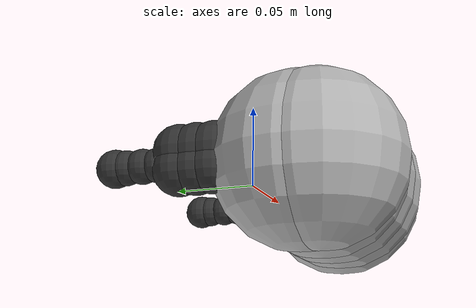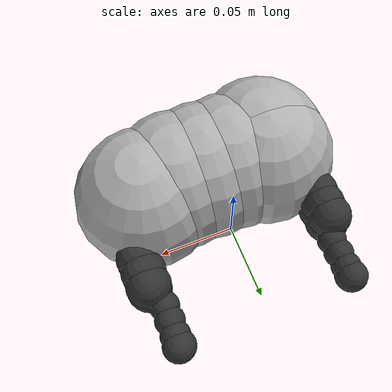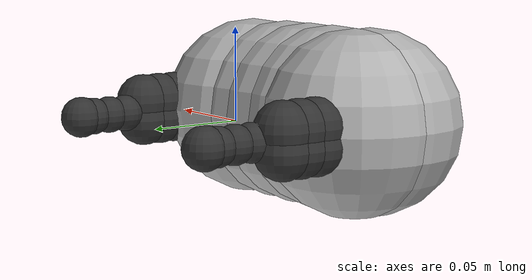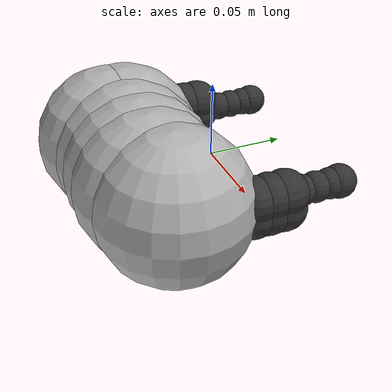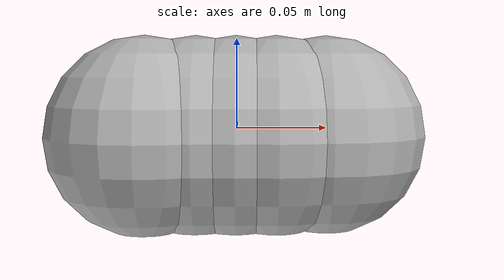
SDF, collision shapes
<?xml version="1.0"?>
<!-- This sdf file is based on schunk_wsg_50.sdf -->
<sdf version="1.7">
  <model name="Schunk_Gripper">
    <link name="body">
      <pose>0 -0.049133 0 0 0 0</pose>
      <inertial>
        <mass>0.988882</mass>
        <inertia>
          <ixx>0.162992</ixx>
          <ixy>0</ixy>
          <ixz>0</ixz>
          <iyy>0.162992</iyy>
          <iyz>0</iyz>
          <izz>0.164814</izz>
        </inertia>
      </inertial>
      <kinematic>0</kinematic>
      <visual name="visual">
        <geometry>
          <mesh>
            <scale>1 1 1</scale>
            <uri>package://drake_models/wsg_50_description/meshes/wsg_body.obj</uri>
          </mesh>
        </geometry>
        <material>
          <diffuse>0.7 0.7 0.7 1</diffuse>
        </material>
      </visual>
     <collision name='sphere1'>
        <pose>0.0 0 0.0 0 0 0</pose>
        <geometry>
          <sphere>
            <radius>0.05</radius>
          </sphere>
        </geometry>
      </collision>
      <collision name='sphere2'>
        <pose>0.02 0 0.0 0 0 0</pose>
        <geometry>
          <sphere>
            <radius>0.05</radius>
          </sphere>
        </geometry>
      </collision>
      <collision name='sphere3'>
        <pose>-0.02 0 0.0 0 0 0</pose>
        <geometry>
          <sphere>
            <radius>0.05</radius>
          </sphere>
        </geometry>
      </collision>
      <collision name='sphere4'>
        <pose>-0.045 0.005 0.0 0 0 0</pose>
        <geometry>
          <sphere>
            <radius>0.05</radius>
          </sphere>
        </geometry>
      </collision>
      <collision name='sphere5'>
        <pose>0.045 0.005 0.0 0 0 0</pose>
        <geometry>
          <sphere>
            <radius>0.05</radius>
          </sphere>
        </geometry>
      </collision>
      <collision name='sphere6'>
        <pose>-0.045 -0.005 0.0 0 0 0</pose>
        <geometry>
          <sphere>
            <radius>0.05</radius>
          </sphere>
        </geometry>
      </collision>
    </link>
    <frame name="body_frame">
      <pose relative_to="body"/>
    </frame>
    <link name="left_finger">
      <pose>-0.06 0.028 0 0 3.141592 0</pose>
      <inertial>
        <mass>0.05</mass>
        <inertia>
          <ixx>0.16</ixx>
          <ixy>0</ixy>
          <ixz>0</ixz>
          <iyy>0.16</iyy>
          <iyz>0</iyz>
          <izz>0.16</izz>
        </inertia>
      </inertial>
      <kinematic>0</kinematic>
      <visual name="visual">
        <geometry>
          <mesh>
            <scale>1 1 1</scale>
            <uri>package://drake_models/wsg_50_description/meshes/finger_without_tip.obj</uri>
          </mesh>
        </geometry>
        <material>
          <diffuse>0.2 0.2 0.2 1</diffuse>
        </material>
      </visual>
      <collision name="sphere1">
        <pose>0.005 -0.03 -0.005 0 0 0</pose>
        <geometry>
          <sphere>
            <radius>0.015</radius>
          </sphere>
        </geometry>
      </collision>
      <collision name="sphere2">
        <pose>0.005 -0.03 0.005 0 0 0</pose>
        <geometry>
          <sphere>
            <radius>0.015</radius>
          </sphere>
        </geometry>
      </collision>
      <collision name="sphere3">
        <pose>0.005 -0.02 -0.005 0 0 0</pose>
        <geometry>
          <sphere>
            <radius>0.015</radius>
          </sphere>
        </geometry>
      </collision>
      <collision name="sphere4">
        <pose>0.005 -0.02 0.005 0 0 0</pose>
        <geometry>
          <sphere>
            <radius>0.015</radius>
          </sphere>
        </geometry>
      </collision>
      <collision name="sphere5">
        <pose>0.005 -0.01 -0.005 0 0 0</pose>
        <geometry>
          <sphere>
            <radius>0.015</radius>
          </sphere>
        </geometry>
      </collision>
      <collision name="sphere6">
        <pose>0.005 -0.01 0.005 0 0 0</pose>
        <geometry>
          <sphere>
            <radius>0.015</radius>
          </sphere>
        </geometry>
      </collision>
      <collision name="sphere7">
        <pose>0.00 0.005 0 0 0 0</pose>
        <geometry>
          <sphere>
            <radius>0.01</radius>
          </sphere>
        </geometry>
      </collision>
      <collision name="sphere8">
        <pose>0.00 0.015 0 0 0 0</pose>
        <geometry>
          <sphere>
            <radius>0.01</radius>
          </sphere>
        </geometry>
      </collision>
      <collision name="sphere9">
        <pose>0.00 0.025 0 0 0 0</pose>
        <geometry>
          <sphere>
            <radius>0.01</radius>
          </sphere>
        </geometry>
      </collision>
      <collision name="sphere10">
        <pose>0.00 0.032 0 0 0 0</pose>
        <geometry>
          <sphere>
            <radius>0.011</radius>
          </sphere>
        </geometry>
      </collision>
   </link>
    <link name="right_finger">
      <pose>0.06 0.028 0 0 0 0</pose>
      <inertial>
        <mass>0.05</mass>
        <inertia>
          <ixx>0.16</ixx>
          <ixy>0</ixy>
          <ixz>0</ixz>
          <iyy>0.16</iyy>
          <iyz>0</iyz>
          <izz>0.16</izz>
        </inertia>
      </inertial>
      <kinematic>0</kinematic>
      <visual name="visual">
        <geometry>
          <mesh>
            <scale>1 1 1</scale>
            <uri>package://drake_models/wsg_50_description/meshes/finger_without_tip.obj</uri>
          </mesh>
        </geometry>
        <material>
          <diffuse>0.2 0.2 0.2 1</diffuse>
        </material>
      </visual>
      <collision name="sphere1">
        <pose>0.005 -0.03 -0.005 0 0 0</pose>
        <geometry>
          <sphere>
            <radius>0.015</radius>
          </sphere>
        </geometry>
      </collision>
      <collision name="sphere2">
        <pose>0.005 -0.03 0.005 0 0 0</pose>
        <geometry>
          <sphere>
            <radius>0.015</radius>
          </sphere>
        </geometry>
      </collision>
      <collision name="sphere3">
        <pose>0.005 -0.02 -0.005 0 0 0</pose>
        <geometry>
          <sphere>
            <radius>0.015</radius>
          </sphere>
        </geometry>
      </collision>
      <collision name="sphere4">
        <pose>0.005 -0.02 0.005 0 0 0</pose>
        <geometry>
          <sphere>
            <radius>0.015</radius>
          </sphere>
        </geometry>
      </collision>
      <collision name="sphere5">
        <pose>0.005 -0.01 -0.005 0 0 0</pose>
        <geometry>
          <sphere>
            <radius>0.015</radius>
          </sphere>
        </geometry>
      </collision>
      <collision name="sphere6">
        <pose>0.005 -0.01 0.005 0 0 0</pose>
        <geometry>
          <sphere>
            <radius>0.015</radius>
          </sphere>
        </geometry>
      </collision>
      <collision name="sphere7">
        <pose>0.00 0.005 0 0 0 0</pose>
        <geometry>
          <sphere>
            <radius>0.01</radius>
          </sphere>
        </geometry>
      </collision>
      <collision name="sphere8">
        <pose>0.00 0.015 0 0 0 0</pose>
        <geometry>
          <sphere>
            <radius>0.01</radius>
          </sphere>
        </geometry>
      </collision>
      <collision name="sphere9">
        <pose>0.00 0.025 0 0 0 0</pose>
        <geometry>
          <sphere>
            <radius>0.01</radius>
          </sphere>
        </geometry>
      </collision>
      <collision name="sphere10">
        <pose>0.00 0.032 0 0 0 0</pose>
        <geometry>
          <sphere>
            <radius>0.011</radius>
          </sphere>
        </geometry>
      </collision>
   </link>
    <joint name="left_finger_sliding_joint" type="fixed">
      <parent>body</parent>
      <child>left_finger</child>
    </joint>
    <joint name="right_finger_sliding_joint" type="fixed">
      <parent>body</parent>
      <child>right_finger</child>
    </joint>
    <static>0</static>
  </model>
</sdf>
